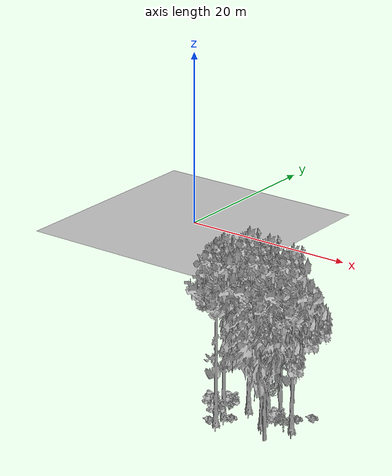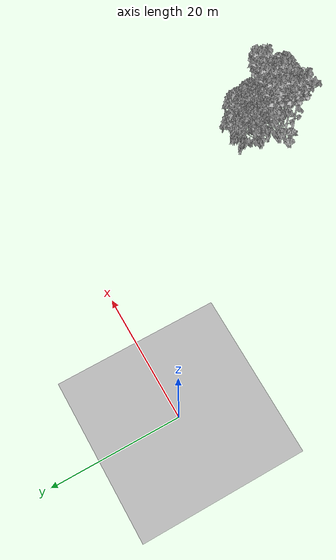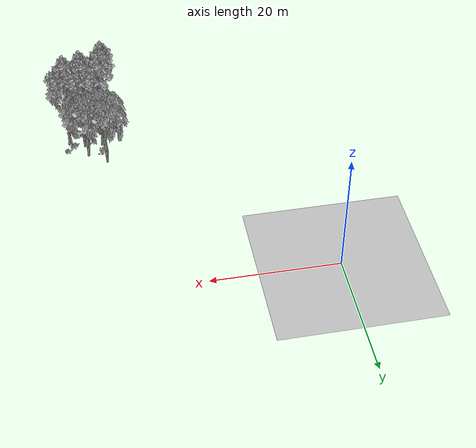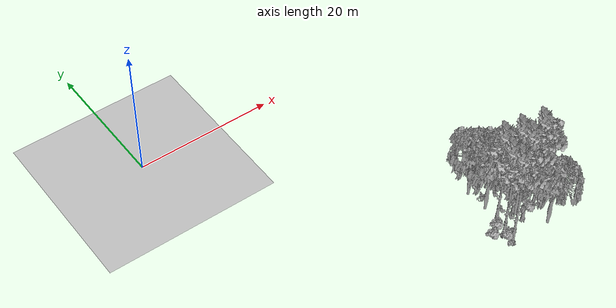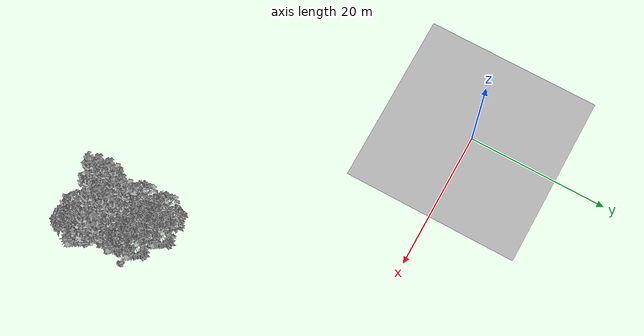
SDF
<sdf version="1.7">
 <world name="default">
  <model name="ground_plane">
   <static>1</static>
   <link name="link">
    <collision name="collision">
     <pose>-50 0 0 0 -0 0</pose>
     <geometry><plane><normal>0 0 1</normal><size>80 80</size></plane></geometry>
     <surface><contact><ode><min_depth>0.01</min_depth><max_vel>0</max_vel></ode></contact></surface>
    </collision>
    <visual name="grass">
     <cast_shadows>0</cast_shadows>
     <geometry>
      <mesh>
       <scale>0.46714285714285714 0.46714285714285714 0.1</scale>
       <uri>file://grass_plane/meshes/grass_plane.dae</uri>
      </mesh>
     </geometry>
    </visual>
   </link>
  </model>
  <model name="Tree 33">
   <static>1</static>
   <pose>35.25263064536574 -33.9643759147954 0 1.57079 -0 0</pose>
   <link name="link">
    <collision name="collision">
     <geometry><mesh><scale>3.5 5 3.5</scale><uri>model://tree_2/meshes/tree_2.obj</uri></mesh></geometry>
    </collision>
    <visual name="visual">
     <geometry><mesh><scale>3.5 5 3.5</scale><uri>model://tree_2/meshes/tree_2.obj</uri></mesh></geometry>
    </visual>
   </link>
  </model>
  <model name="Tree 41">
   <static>1</static>
   <pose>37.726126253593876 -35.63986922614796 0 1.57079 -0 0</pose>
   <link name="link">
    <collision name="collision">
     <geometry><mesh><scale>3.5 5 3.5</scale><uri>model://tree_9/meshes/tree_9.obj</uri></mesh></geometry>
    </collision>
    <visual name="visual">
     <geometry><mesh><scale>3.5 5 3.5</scale><uri>model://tree_9/meshes/tree_9.obj</uri></mesh></geometry>
    </visual>
   </link>
  </model>
  <model name="Tree 43">
   <static>1</static>
   <pose>34.57953559666831 -35.51637491774482 0 1.57079 -0 0</pose>
   <link name="link">
    <collision name="collision">
     <geometry><mesh><scale>3.5 5 3.5</scale><uri>model://tree_2/meshes/tree_2.obj</uri></mesh></geometry>
    </collision>
    <visual name="visual">
     <geometry><mesh><scale>3.5 5 3.5</scale><uri>model://tree_2/meshes/tree_2.obj</uri></mesh></geometry>
    </visual>
   </link>
  </model>
  <model name="Tree 187">
   <static>1</static>
   <pose>32.28383111690398 -34.61103099614703 0 1.57079 -0 0</pose>
   <link name="link">
    <collision name="collision">
     <geometry><mesh><scale>3.5 5 3.5</scale><uri>model://tree_9/meshes/tree_9.obj</uri></mesh></geometry>
    </collision>
    <visual name="visual">
     <geometry><mesh><scale>3.5 5 3.5</scale><uri>model://tree_9/meshes/tree_9.obj</uri></mesh></geometry>
    </visual>
   </link>
  </model>
  <model name="Tree 233">
   <static>1</static>
   <pose>35.061925250823734 -36.513606573136606 0 1.57079 -0 0</pose>
   <link name="link">
    <collision name="collision">
     <geometry><mesh><scale>3.5 5 3.5</scale><uri>model://tree_9/meshes/tree_9.obj</uri></mesh></geometry>
    </collision>
    <visual name="visual">
     <geometry><mesh><scale>3.5 5 3.5</scale><uri>model://tree_9/meshes/tree_9.obj</uri></mesh></geometry>
    </visual>
   </link>
  </model>
  <model name="Tree 237">
   <static>1</static>
   <pose>31.44596835419695 -38.546872507796415 0 1.57079 -0 0</pose>
   <link name="link">
    <collision name="collision">
     <geometry><mesh><scale>3.5 5 3.5</scale><uri>model://tree_9/meshes/tree_9.obj</uri></mesh></geometry>
    </collision>
    <visual name="visual">
     <geometry><mesh><scale>3.5 5 3.5</scale><uri>model://tree_9/meshes/tree_9.obj</uri></mesh></geometry>
    </visual>
   </link>
  </model>
  <model name="Tree 366">
   <static>1</static>
   <pose>31.942956444464343 -29.301384390665888 0 1.57079 -0 0</pose>
   <link name="link">
    <collision name="collision">
     <geometry><mesh><scale>3.5 5 3.5</scale><uri>model://tree_2/meshes/tree_2.obj</uri></mesh></geometry>
    </collision>
    <visual name="visual">
     <geometry><mesh><scale>3.5 5 3.5</scale><uri>model://tree_2/meshes/tree_2.obj</uri></mesh></geometry>
    </visual>
   </link>
  </model>
  <model name="Tree 396">
   <static>1</static>
   <pose>34.74209657773994 -35.011530244706236 0 1.57079 -0 0</pose>
   <link name="link">
    <collision name="collision">
     <geometry><mesh><scale>3.5 5 3.5</scale><uri>model://tree_9/meshes/tree_9.obj</uri></mesh></geometry>
    </collision>
    <visual name="visual">
     <geometry><mesh><scale>3.5 5 3.5</scale><uri>model://tree_9/meshes/tree_9.obj</uri></mesh></geometry>
    </visual>
   </link>
  </model>
  <model name="Tree 446">
   <static>1</static>
   <pose>37.00813690097151 -38.98142936351423 0 1.57079 -0 0</pose>
   <link name="link">
    <collision name="collision">
     <geometry><mesh><scale>3.5 5 3.5</scale><uri>model://tree_2/meshes/tree_2.obj</uri></mesh></geometry>
    </collision>
    <visual name="visual">
     <geometry><mesh><scale>3.5 5 3.5</scale><uri>model://tree_2/meshes/tree_2.obj</uri></mesh></geometry>
    </visual>
   </link>
  </model>
  <model name="Tree 474">
   <static>1</static>
   <pose>34.8258089536445 -31.42264456564469 0 1.57079 -0 0</pose>
   <link name="link">
    <collision name="collision">
     <geometry><mesh><scale>3.5 5 3.5</scale><uri>model://tree_2/meshes/tree_2.obj</uri></mesh></geometry>
    </collision>
    <visual name="visual">
     <geometry><mesh><scale>3.5 5 3.5</scale><uri>model://tree_2/meshes/tree_2.obj</uri></mesh></geometry>
    </visual>
   </link>
  </model>
  <model name="Tree 505">
   <static>1</static>
   <pose>32.05885670585474 -32.49131917256469 0 1.57079 -0 0</pose>
   <link name="link">
    <collision name="collision">
     <geometry><mesh><scale>3.5 5 3.5</scale><uri>model://tree_2/meshes/tree_2.obj</uri></mesh></geometry>
    </collision>
    <visual name="visual">
     <geometry><mesh><scale>3.5 5 3.5</scale><uri>model://tree_2/meshes/tree_2.obj</uri></mesh></geometry>
    </visual>
   </link>
  </model>
  <model name="Tree 518">
   <static>1</static>
   <pose>31.25902285417726 -37.0738049971693 0 1.57079 -0 0</pose>
   <link name="link">
    <collision name="collision">
     <geometry><mesh><scale>3.5 5 3.5</scale><uri>model://tree_9/meshes/tree_9.obj</uri></mesh></geometry>
    </collision>
    <visual name="visual">
     <geometry><mesh><scale>3.5 5 3.5</scale><uri>model://tree_9/meshes/tree_9.obj</uri></mesh></geometry>
    </visual>
   </link>
  </model>
  <model name="Bush 22">
   <static>1</static>
   <pose>36.3208346201412 -36.19805923463921 0 1.57079 -0 0</pose>
   <link name="link">
    <collision name="collision">
     <geometry><mesh><scale>2 2 2</scale><uri>model://bush_1/meshes/bush_1.obj</uri></mesh></geometry>
     <surface><contact><collide_without_contact>false</collide_without_contact></contact></surface>
    </collision>
    <visual name="visual">
     <geometry><mesh><scale>2 2 2</scale><uri>model://bush_1/meshes/bush_1.obj</uri></mesh></geometry>
    </visual>
   </link>
  </model>
  <model name="Bush 240">
   <static>1</static>
   <pose>32.61105485511919 -31.283308584919496 0 1.57079 -0 0</pose>
   <link name="link">
    <collision name="collision">
     <geometry><mesh><scale>2 2 2</scale><uri>model://bush_4/meshes/bush_4.obj</uri></mesh></geometry>
     <surface><contact><collide_without_contact>false</collide_without_contact></contact></surface>
    </collision>
    <visual name="visual">
     <geometry><mesh><scale>2 2 2</scale><uri>model://bush_4/meshes/bush_4.obj</uri></mesh></geometry>
    </visual>
   </link>
  </model>
  <model name="Bush 241">
   <static>1</static>
   <pose>38.185269541983175 -33.060067516832696 0 1.57079 -0 0</pose>
   <link name="link">
    <collision name="collision">
     <geometry><mesh><scale>2 2 2</scale><uri>model://bush_2/meshes/bush_2.obj</uri></mesh></geometry>
     <surface><contact><collide_without_contact>false</collide_without_contact></contact></surface>
    </collision>
    <visual name="visual">
     <geometry><mesh><scale>2 2 2</scale><uri>model://bush_2/meshes/bush_2.obj</uri></mesh></geometry>
    </visual>
   </link>
  </model>
  <model name="Bush 294">
   <static>1</static>
   <pose>32.28864697997261 -37.39517518758198 0 1.57079 -0 0</pose>
   <link name="link">
    <collision name="collision">
     <geometry><mesh><scale>2 2 2</scale><uri>model://bush_2/meshes/bush_2.obj</uri></mesh></geometry>
     <surface><contact><collide_without_contact>false</collide_without_contact></contact></surface>
    </collision>
    <visual name="visual">
     <geometry><mesh><scale>2 2 2</scale><uri>model://bush_2/meshes/bush_2.obj</uri></mesh></geometry>
    </visual>
   </link>
  </model>
  <model name="Bush 373">
   <static>1</static>
   <pose>31.07805223153585 -35.996159184240085 0 1.57079 -0 0</pose>
   <link name="link">
    <collision name="collision">
     <geometry><mesh><scale>2 2 2</scale><uri>model://bush_1/meshes/bush_1.obj</uri></mesh></geometry>
     <surface><contact><collide_without_contact>false</collide_without_contact></contact></surface>
    </collision>
    <visual name="visual">
     <geometry><mesh><scale>2 2 2</scale><uri>model://bush_1/meshes/bush_1.obj</uri></mesh></geometry>
    </visual>
   </link>
  </model>
  <model name="Bush 443">
   <static>1</static>
   <pose>30.954256875009648 -38.05091587303704 0 1.57079 -0 0</pose>
   <link name="link">
    <collision name="collision">
     <geometry><mesh><scale>2 2 2</scale><uri>model://bush_1/meshes/bush_1.obj</uri></mesh></geometry>
     <surface><contact><collide_without_contact>false</collide_without_contact></contact></surface>
    </collision>
    <visual name="visual">
     <geometry><mesh><scale>2 2 2</scale><uri>model://bush_1/meshes/bush_1.obj</uri></mesh></geometry>
    </visual>
   </link>
  </model>
  <model name="Bush 456">
   <static>1</static>
   <pose>37.19634189903684 -34.05391808579679 0 1.57079 -0 0</pose>
   <link name="link">
    <collision name="collision">
     <geometry><mesh><scale>2 2 2</scale><uri>model://bush_2/meshes/bush_2.obj</uri></mesh></geometry>
     <surface><contact><collide_without_contact>false</collide_without_contact></contact></surface>
    </collision>
    <visual name="visual">
     <geometry><mesh><scale>2 2 2</scale><uri>model://bush_2/meshes/bush_2.obj</uri></mesh></geometry>
    </visual>
   </link>
  </model>
  <model name="Bush 515">
   <static>1</static>
   <pose>37.571301134829824 -36.66582391678777 0 1.57079 -0 0</pose>
   <link name="link">
    <collision name="collision">
     <geometry><mesh><scale>2 2 2</scale><uri>model://bush_5/meshes/bush_5.obj</uri></mesh></geometry>
     <surface><contact><collide_without_contact>false</collide_without_contact></contact></surface>
    </collision>
    <visual name="visual">
     <geometry><mesh><scale>2 2 2</scale><uri>model://bush_5/meshes/bush_5.obj</uri></mesh></geometry>
    </visual>
   </link>
  </model>
  <model name="Bush 585">
   <static>1</static>
   <pose>30.929584933407185 -38.871635723506316 0 1.57079 -0 0</pose>
   <link name="link">
    <collision name="collision">
     <geometry><mesh><scale>2 2 2</scale><uri>model://bush_2/meshes/bush_2.obj</uri></mesh></geometry>
     <surface><contact><collide_without_contact>false</collide_without_contact></contact></surface>
    </collision>
    <visual name="visual">
     <geometry><mesh><scale>2 2 2</scale><uri>model://bush_2/meshes/bush_2.obj</uri></mesh></geometry>
    </visual>
   </link>
  </model>
  <model name="Bush 596">
   <static>1</static>
   <pose>29.571786296381518 -36.899539968114105 0 1.57079 -0 0</pose>
   <link name="link">
    <collision name="collision">
     <geometry><mesh><scale>2 2 2</scale><uri>model://bush_1/meshes/bush_1.obj</uri></mesh></geometry>
     <surface><contact><collide_without_contact>false</collide_without_contact></contact></surface>
    </collision>
    <visual name="visual">
     <geometry><mesh><scale>2 2 2</scale><uri>model://bush_1/meshes/bush_1.obj</uri></mesh></geometry>
    </visual>
   </link>
  </model>
  <model name="Bush 611">
   <static>1</static>
   <pose>36.88113147184271 -34.4518321534151 0 1.57079 -0 0</pose>
   <link name="link">
    <collision name="collision">
     <geometry><mesh><scale>2 2 2</scale><uri>model://bush_2/meshes/bush_2.obj</uri></mesh></geometry>
     <surface><contact><collide_without_contact>false</collide_without_contact></contact></surface>
    </collision>
    <visual name="visual">
     <geometry><mesh><scale>2 2 2</scale><uri>model://bush_2/meshes/bush_2.obj</uri></mesh></geometry>
    </visual>
   </link>
  </model>
 </world>
</sdf>
